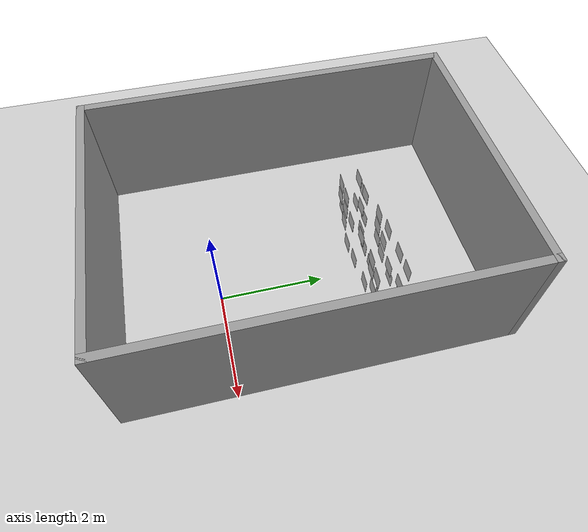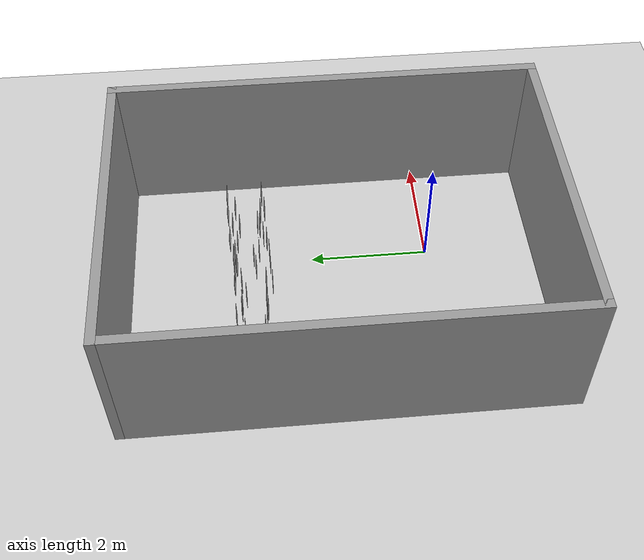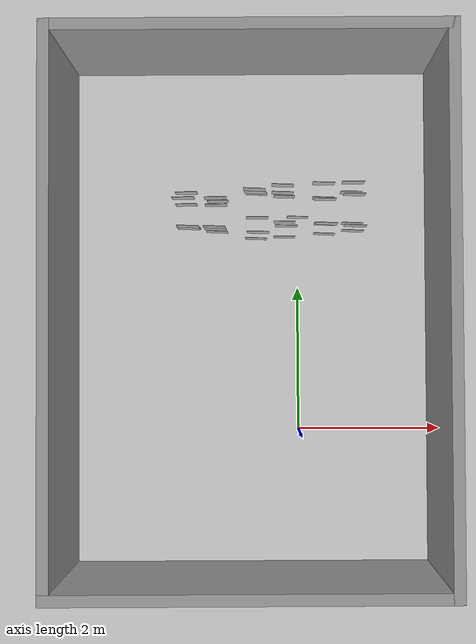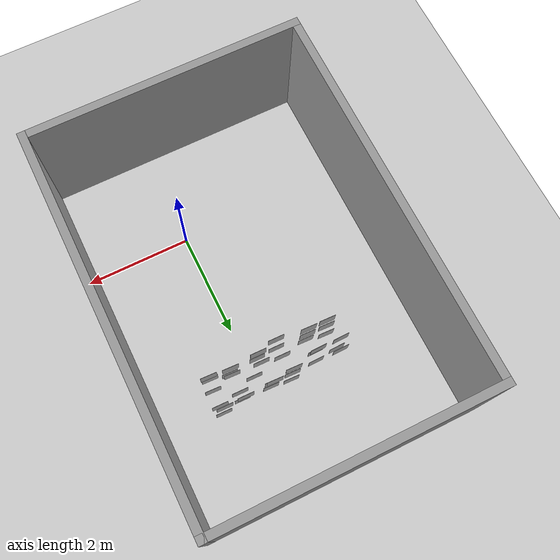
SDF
<sdf version="1.6">
 <world name="default">
  <model name="ground_plane">
   <static>1</static>
   <link name="link">
    <collision name="collision">
     <geometry><plane><normal>0 0 1</normal><size>100 100</size></plane></geometry>
     <surface><friction><ode><mu>100</mu><mu2>50</mu2></ode></friction></surface>
    </collision>
    <visual name="visual">
     <cast_shadows>0</cast_shadows>
     <geometry><plane><normal>0 0 1</normal><size>100 100</size></plane></geometry>
     <material>
      <script><uri>file://media/materials/scripts/gazebo.material</uri><name>Gazebo/Grey</name></script>
     </material>
    </visual>
   </link>
  </model>
  <model name="Fruit">
   <static>1</static>
   <link name="link">
    <visual name="visual">
     <geometry><mesh><uri>model://fruit/meshes/Fruit.dae</uri><scale>0.6 0.6 0.6</scale></mesh></geometry>
    </visual>
   </link>
   <pose>-1.52092 2.80915 0.443503 0 0 -1.61022</pose>
  </model>
  <model name="Fruit_clone">
   <static>1</static>
   <link name="link">
    <visual name="visual">
     <geometry><mesh><uri>model://fruit/meshes/Fruit.dae</uri><scale>0.6 0.6 0.6</scale></mesh></geometry>
    </visual>
   </link>
   <pose>-1.1397 2.79916 0.05806 0 0 -1.61022</pose>
  </model>
  <model name="Fruit_clone_0">
   <static>1</static>
   <link name="link">
    <visual name="visual">
     <geometry><mesh><uri>model://fruit/meshes/Fruit.dae</uri><scale>0.6 0.6 0.6</scale></mesh></geometry>
    </visual>
   </link>
   <pose>-1.52507 2.8589 0.05806 0 0 -1.61022</pose>
  </model>
  <model name="Fruit_clone_1">
   <static>1</static>
   <link name="link">
    <visual name="visual">
     <geometry><mesh><uri>model://fruit/meshes/Fruit.dae</uri><scale>0.6 0.6 0.6</scale></mesh></geometry>
    </visual>
   </link>
   <pose>-1.14648 2.79916 0.449238 0 0 -1.61022</pose>
  </model>
  <model name="Fruit_clone_1_clone">
   <static>1</static>
   <link name="link">
    <visual name="visual">
     <geometry><mesh><uri>model://fruit/meshes/Fruit.dae</uri><scale>0.6 0.6 0.6</scale></mesh></geometry>
    </visual>
   </link>
   <pose>-1.14807 2.7919 0.814922 0 0 -1.61022</pose>
  </model>
  <model name="Fruit_clone_1_clone_clone">
   <static>1</static>
   <link name="link">
    <visual name="visual">
     <geometry><mesh><uri>model://fruit/meshes/Fruit.dae</uri><scale>0.6 0.6 0.6</scale></mesh></geometry>
    </visual>
   </link>
   <pose>-1.50613 2.79916 0.814922 0 0 -1.61022</pose>
  </model>
  <model name="Milk">
   <static>1</static>
   <link name="link">
    <visual name="visual">
     <geometry><mesh><uri>model://milk/meshes/Milk.dae</uri><scale>0.6 0.6 0.6</scale></mesh></geometry>
    </visual>
   </link>
   <pose>-0.588716 2.70011 0.060059 0 0 -1.58824</pose>
  </model>
  <model name="Milk_clone">
   <static>1</static>
   <link name="link">
    <visual name="visual">
     <geometry><mesh><uri>model://milk/meshes/Milk.dae</uri><scale>0.6 0.6 0.6</scale></mesh></geometry>
    </visual>
   </link>
   <pose>-0.191552 2.89349 0.442077 0 0 -1.58824</pose>
  </model>
  <model name="Milk_clone_0">
   <static>1</static>
   <link name="link">
    <visual name="visual">
     <geometry><mesh><uri>model://milk/meshes/Milk.dae</uri><scale>0.6 0.6 0.6</scale></mesh></geometry>
    </visual>
   </link>
   <pose>-0.189631 2.72179 0.060059 0 0 -1.58824</pose>
  </model>
  <model name="Milk_clone_clone">
   <static>1</static>
   <link name="link">
    <visual name="visual">
     <geometry><mesh><uri>model://milk/meshes/Milk.dae</uri><scale>0.6 0.6 0.6</scale></mesh></geometry>
    </visual>
   </link>
   <pose>-0.554473 2.71615 0.809429 0 0 -1.58824</pose>
  </model>
  <model name="Milk_clone_clone_0">
   <static>1</static>
   <link name="link">
    <visual name="visual">
     <geometry><mesh><uri>model://milk/meshes/Milk.dae</uri><scale>0.6 0.6 0.6</scale></mesh></geometry>
    </visual>
   </link>
   <pose>-0.569172 2.95457 0.442077 0 0 -1.58824</pose>
  </model>
  <model name="Milk_clone_clone_clone">
   <static>1</static>
   <link name="link">
    <visual name="visual">
     <geometry><mesh><uri>model://milk/meshes/Milk.dae</uri><scale>0.6 0.6 0.6</scale></mesh></geometry>
    </visual>
   </link>
   <pose>-0.171023 2.79916 0.816637 0 0 -1.58824</pose>
  </model>
  <model name="Pasta">
   <static>1</static>
   <link name="link">
    <visual name="visual">
     <geometry><mesh><uri>model://pasta/meshes/Pasta.dae</uri><scale>0.6 0.6 0.6</scale></mesh></geometry>
    </visual>
   </link>
   <pose>0.373085 2.76282 0.05937 0 0 -1.61264</pose>
  </model>
  <model name="Pasta_clone">
   <static>1</static>
   <link name="link">
    <visual name="visual">
     <geometry><mesh><uri>model://pasta/meshes/Pasta.dae</uri><scale>0.6 0.6 0.6</scale></mesh></geometry>
    </visual>
   </link>
   <pose>0.75193 2.76854 0.426652 0 0 -1.61264</pose>
  </model>
  <model name="Pasta_clone_0">
   <static>1</static>
   <link name="link">
    <visual name="visual">
     <geometry><mesh><uri>model://pasta/meshes/Pasta.dae</uri><scale>0.6 0.6 0.6</scale></mesh></geometry>
    </visual>
   </link>
   <pose>0.773096 2.90876 0.05937 0 0 -1.61264</pose>
  </model>
  <model name="Pasta_clone_clone">
   <static>1</static>
   <link name="link">
    <visual name="visual">
     <geometry><mesh><uri>model://pasta/meshes/Pasta.dae</uri><scale>0.6 0.6 0.6</scale></mesh></geometry>
    </visual>
   </link>
   <pose>0.373903 2.83234 0.802813 0 0 -1.61264</pose>
  </model>
  <model name="Pasta_clone_clone_0">
   <static>1</static>
   <link name="link">
    <visual name="visual">
     <geometry><mesh><uri>model://pasta/meshes/Pasta.dae</uri><scale>0.6 0.6 0.6</scale></mesh></geometry>
    </visual>
   </link>
   <pose>0.367304 2.86378 0.426652 0 0 -1.61264</pose>
  </model>
  <model name="Pasta_clone_clone_clone">
   <static>1</static>
   <link name="link">
    <visual name="visual">
     <geometry><mesh><uri>model://pasta/meshes/Pasta.dae</uri><scale>0.6 0.6 0.6</scale></mesh></geometry>
    </visual>
   </link>
   <pose>0.766391 2.79942 0.802813 0 0 -1.61264</pose>
  </model>
  <model name="Rice">
   <static>1</static>
   <link name="link">
    <visual name="visual">
     <geometry><mesh><uri>model://rice/meshes/Rice.dae</uri><scale>0.6 0.6 0.6</scale></mesh></geometry>
    </visual>
   </link>
   <pose>0.763029 3.35037 0.054481 0 0 -1.58952</pose>
  </model>
  <model name="Rice_clone">
   <static>1</static>
   <link name="link">
    <visual name="visual">
     <geometry><mesh><uri>model://rice/meshes/Rice.dae</uri><scale>0.6 0.6 0.6</scale></mesh></geometry>
    </visual>
   </link>
   <pose>0.339259 3.37661 0.813947 0 0 -1.58952</pose>
  </model>
  <model name="Rice_clone_0">
   <static>1</static>
   <link name="link">
    <visual name="visual">
     <geometry><mesh><uri>model://rice/meshes/Rice.dae</uri><scale>0.6 0.6 0.6</scale></mesh></geometry>
    </visual>
   </link>
   <pose>0 3 0.054481 0 0 -1.58952</pose>
  </model>
  <model name="Rice_clone_1">
   <static>1</static>
   <link name="link">
    <visual name="visual">
     <geometry><mesh><uri>model://rice/meshes/Rice.dae</uri><scale>0.6 0.6 0.6</scale></mesh></geometry>
    </visual>
   </link>
   <pose>0.363871 3.2732 0.054481 0 0 -1.58952</pose>
  </model>
  <model name="Rice_clone_clone">
   <static>1</static>
   <link name="link">
    <visual name="visual">
     <geometry><mesh><uri>model://rice/meshes/Rice.dae</uri><scale>0.6 0.6 0.6</scale></mesh></geometry>
    </visual>
   </link>
   <pose>0.786608 3.2732 0.441258 0 0 -1.58952</pose>
  </model>
  <model name="Rice_clone_clone_0">
   <static>1</static>
   <link name="link">
    <visual name="visual">
     <geometry><mesh><uri>model://rice/meshes/Rice.dae</uri><scale>0.6 0.6 0.6</scale></mesh></geometry>
    </visual>
   </link>
   <pose>0.376066 3.20758 0.441258 0 0 -1.58952</pose>
  </model>
  <model name="Rice_clone_clone_1">
   <static>1</static>
   <link name="link">
    <visual name="visual">
     <geometry><mesh><uri>model://rice/meshes/Rice.dae</uri><scale>0.6 0.6 0.6</scale></mesh></geometry>
    </visual>
   </link>
   <pose>0.739115 3.38642 0.813947 0 0 -1.58952</pose>
  </model>
  <model name="SteeringWheel">
   <static>1</static>
   <link name="link">
    <visual name="visual">
     <geometry>
      <mesh><uri>model://steeringwheel/meshes/SteeringWheel.dae</uri><scale>0.6 0.6 0.6</scale></mesh>
     </geometry>
    </visual>
   </link>
   <pose>-0.189282 3.29597 0.060845 0 0 -1.60929</pose>
  </model>
  <model name="SteeringWheel_clone">
   <static>1</static>
   <link name="link">
    <visual name="visual">
     <geometry>
      <mesh><uri>model://steeringwheel/meshes/SteeringWheel.dae</uri><scale>0.6 0.6 0.6</scale></mesh>
     </geometry>
    </visual>
   </link>
   <pose>-0.593949 3.30658 0.448214 0 0 -1.60929</pose>
  </model>
  <model name="SteeringWheel_clone_0">
   <static>1</static>
   <link name="link">
    <visual name="visual">
     <geometry>
      <mesh><uri>model://steeringwheel/meshes/SteeringWheel.dae</uri><scale>0.6 0.6 0.6</scale></mesh>
     </geometry>
    </visual>
   </link>
   <pose>-0.574818 3.33781 0.060845 0 0 -1.60929</pose>
  </model>
  <model name="SteeringWheel_clone_clone">
   <static>1</static>
   <link name="link">
    <visual name="visual">
     <geometry>
      <mesh><uri>model://steeringwheel/meshes/SteeringWheel.dae</uri><scale>0.6 0.6 0.6</scale></mesh>
     </geometry>
    </visual>
   </link>
   <pose>-0.219021 3.35405 0.796906 0 0 -1.60929</pose>
  </model>
  <model name="SteeringWheel_clone_clone_0">
   <static>1</static>
   <link name="link">
    <visual name="visual">
     <geometry>
      <mesh><uri>model://steeringwheel/meshes/SteeringWheel.dae</uri><scale>0.6 0.6 0.6</scale></mesh>
     </geometry>
    </visual>
   </link>
   <pose>-0.213128 3.29805 0.448214 0 0 -1.60929</pose>
  </model>
  <model name="SteeringWheel_clone_clone_clone">
   <static>1</static>
   <link name="link">
    <visual name="visual">
     <geometry>
      <mesh><uri>model://steeringwheel/meshes/SteeringWheel.dae</uri><scale>0.6 0.6 0.6</scale></mesh>
     </geometry>
    </visual>
   </link>
   <pose>-0.60511 3.30021 0.799839 0 0 -1.60929</pose>
  </model>
  <model name="IceCream">
   <static>1</static>
   <link name="link">
    <visual name="visual">
     <geometry><mesh><uri>model://icecream/meshes/IceCream.dae</uri><scale>0.6 0.6 0.6</scale></mesh></geometry>
    </visual>
   </link>
   <pose>-1.12801 3.23236 0.06024 0 -0 1.58593</pose>
  </model>
  <model name="IceCream_clone">
   <static>1</static>
   <link name="link">
    <visual name="visual">
     <geometry><mesh><uri>model://icecream/meshes/IceCream.dae</uri><scale>0.6 0.6 0.6</scale></mesh></geometry>
    </visual>
   </link>
   <pose>-1.54916 3.30276 0.440138 0 -0 1.58593</pose>
  </model>
  <model name="IceCream_clone_0">
   <static>1</static>
   <link name="link">
    <visual name="visual">
     <geometry><mesh><uri>model://icecream/meshes/IceCream.dae</uri><scale>0.6 0.6 0.6</scale></mesh></geometry>
    </visual>
   </link>
   <pose>-1.57256 3.18525 0.06024 0 -0 1.58593</pose>
  </model>
  <model name="IceCream_clone_clone">
   <static>1</static>
   <link name="link">
    <visual name="visual">
     <geometry><mesh><uri>model://icecream/meshes/IceCream.dae</uri><scale>0.6 0.6 0.6</scale></mesh></geometry>
    </visual>
   </link>
   <pose>-1.132 3.18525 0.811735 0 -0 1.58593</pose>
  </model>
  <model name="IceCream_clone_clone_clone">
   <static>1</static>
   <link name="link">
    <visual name="visual">
     <geometry><mesh><uri>model://icecream/meshes/IceCream.dae</uri><scale>0.6 0.6 0.6</scale></mesh></geometry>
    </visual>
   </link>
   <pose>-1.13873 3.13243 0.440138 0 -0 1.58593</pose>
  </model>
  <model name="IceCream_clone_clone_clone_0">
   <static>1</static>
   <link name="link">
    <visual name="visual">
     <geometry><mesh><uri>model://icecream/meshes/IceCream.dae</uri><scale>0.6 0.6 0.6</scale></mesh></geometry>
    </visual>
   </link>
   <pose>-1.5699 3.18525 0.811735 0 -0 1.58593</pose>
  </model>
  <model name="Untitled">
   <pose>-0.65 1.61 0 0 -0 0</pose>
   <link name="Wall_0">
    <collision name="Wall_0_Collision">
     <geometry><box><size>5.25 0.15 2.5</size></box></geometry>
     <pose>0 0 1.25 0 -0 0</pose>
    </collision>
    <visual name="Wall_0_Visual">
     <pose>0 0 1.25 0 -0 0</pose>
     <geometry><box><size>5.25 0.15 2.5</size></box></geometry>
     <material>
      <script><uri>file://media/materials/scripts/gazebo.material</uri><name>Gazebo/Grey</name></script>
      <ambient>1 1 1 1</ambient>
     </material>
     <meta><layer>0</layer></meta>
    </visual>
    <pose>0 -3.55 0 0 -0 0</pose>
   </link>
   <link name="Wall_1">
    <collision name="Wall_1_Collision">
     <geometry><box><size>7.25 0.15 2.5</size></box></geometry>
     <pose>0 0 1.25 0 -0 0</pose>
    </collision>
    <visual name="Wall_1_Visual">
     <pose>0 0 1.25 0 -0 0</pose>
     <geometry><box><size>7.25 0.15 2.5</size></box></geometry>
     <material>
      <script><uri>file://media/materials/scripts/gazebo.material</uri><name>Gazebo/Grey</name></script>
      <ambient>1 1 1 1</ambient>
     </material>
     <meta><layer>0</layer></meta>
    </visual>
    <pose>2.55 -0 0 0 -0 1.5708</pose>
   </link>
   <link name="Wall_2">
    <collision name="Wall_2_Collision">
     <geometry><box><size>5.25 0.15 2.5</size></box></geometry>
     <pose>0 0 1.25 0 -0 0</pose>
    </collision>
    <visual name="Wall_2_Visual">
     <pose>0 0 1.25 0 -0 0</pose>
     <geometry><box><size>5.25 0.15 2.5</size></box></geometry>
     <material>
      <script><uri>file://media/materials/scripts/gazebo.material</uri><name>Gazebo/Grey</name></script>
      <ambient>1 1 1 1</ambient>
     </material>
     <meta><layer>0</layer></meta>
    </visual>
    <pose>0 3.55 0 0 -0 3.14159</pose>
   </link>
   <link name="Wall_3">
    <collision name="Wall_3_Collision">
     <geometry><box><size>7.25 0.15 2.5</size></box></geometry>
     <pose>0 0 1.25 0 -0 0</pose>
    </collision>
    <visual name="Wall_3_Visual">
     <pose>0 0 1.25 0 -0 0</pose>
     <geometry><box><size>7.25 0.15 2.5</size></box></geometry>
     <material>
      <script><uri>file://media/materials/scripts/gazebo.material</uri><name>Gazebo/Grey</name></script>
      <ambient>1 1 1 1</ambient>
     </material>
     <meta><layer>0</layer></meta>
    </visual>
    <pose>-2.55 -0 0 0 -0 -1.5708</pose>
   </link>
   <static>1</static>
  </model>
 </world>
</sdf>
